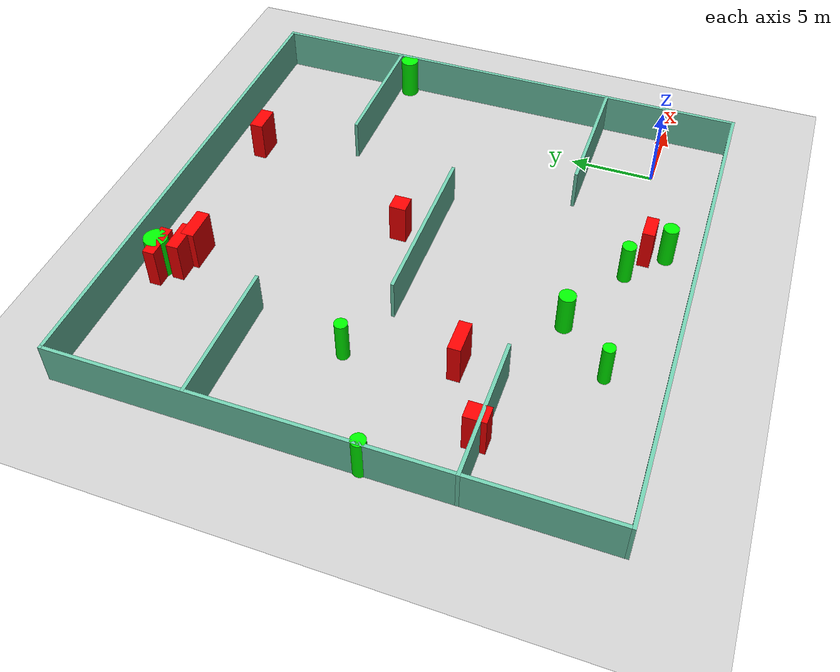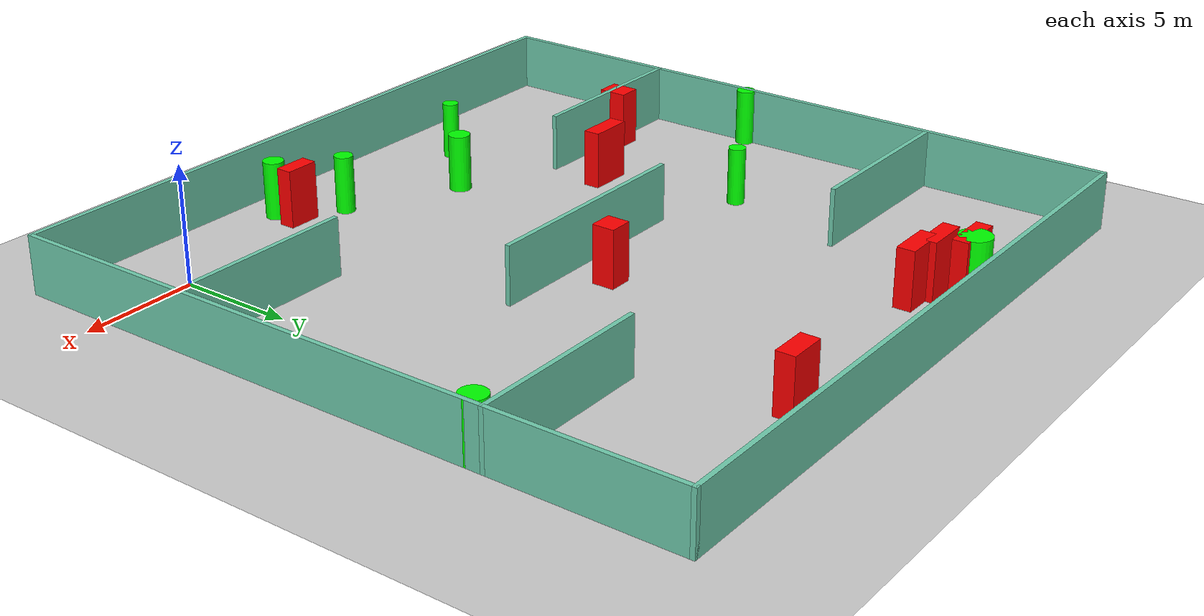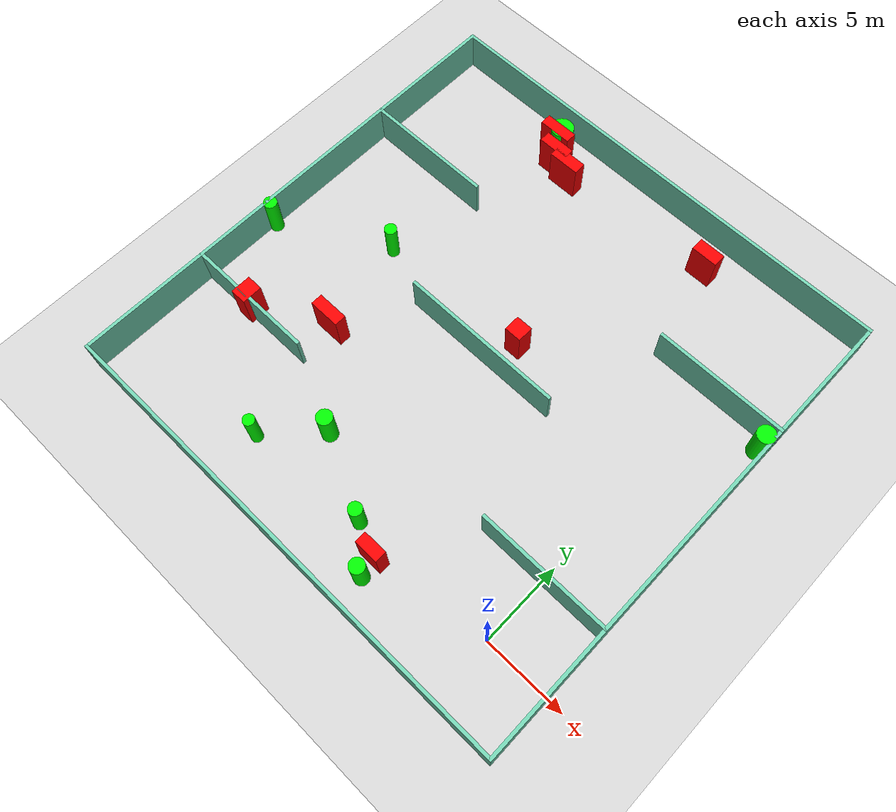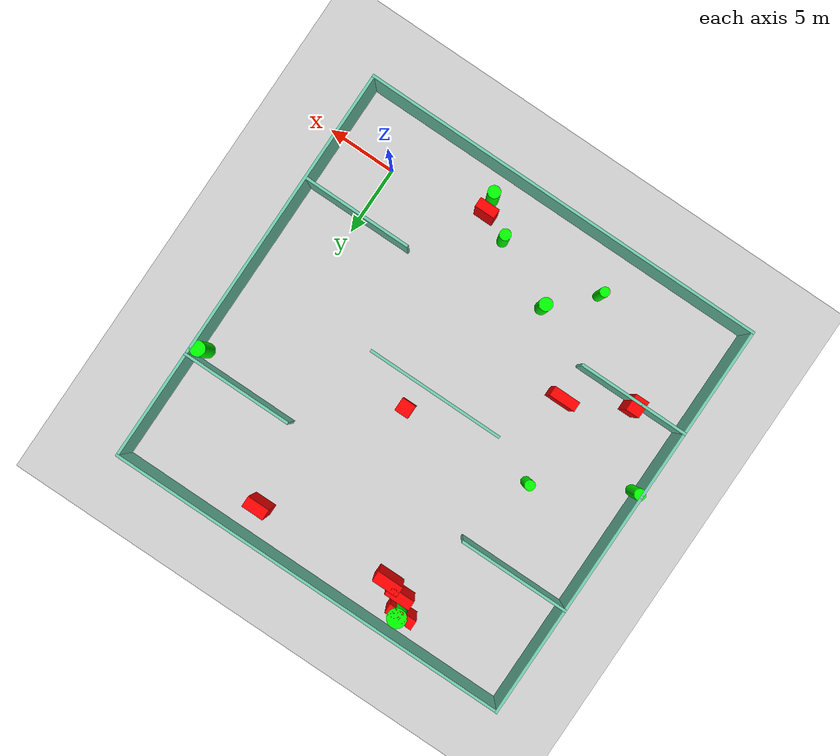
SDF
<sdf version="1.7">
 <world name="default">
  <light name="sun" type="directional">
   <pose>0 0 10 0 -0 0</pose>
   <diffuse>0.8 0.8 0.8 1</diffuse>
   <specular>0.2 0.2 0.2 1</specular>
   <attenuation>
    <range>1000</range>
    <constant>0.9</constant>
    <linear>0.01</linear>
    <quadratic>0.001</quadratic>
   </attenuation>
   <direction>-0.5 0.1 -0.9</direction>
   <spot><inner_angle>0</inner_angle><outer_angle>0</outer_angle><falloff>0</falloff></spot>
  </light>
  <model name="ground_plane">
   <static>1</static>
   <link name="link">
    <collision name="collision">
     <geometry><plane><normal>0 0 1</normal><size>100 100</size></plane></geometry>
     <surface>
      <contact><collide_bitmask>65535</collide_bitmask></contact>
      <friction><ode><mu>100</mu><mu2>50</mu2></ode></friction>
     </surface>
    </collision>
    <visual name="visual">
     <cast_shadows>0</cast_shadows>
     <geometry><plane><normal>0 0 1</normal><size>100 100</size></plane></geometry>
     <material>
      <script><uri>file://media/materials/scripts/gazebo.material</uri><name>Gazebo/Grey</name></script>
     </material>
    </visual>
   </link>
  </model>
  <gravity>0 0 -9.8</gravity>
  <magnetic_field>6e-06 2.3e-05 -4.2e-05</magnetic_field>
  <atmosphere type="adiabatic"/>
  <physics type="ode">
   <max_step_size>0.001</max_step_size>
   <real_time_factor>1</real_time_factor>
   <real_time_update_rate>1000</real_time_update_rate>
  </physics>
  <scene><ambient>0.4 0.4 0.4 1</ambient><background>0.7 0.7 0.7 1</background><shadows>1</shadows></scene>
  <spherical_coordinates>
   <surface_model>EARTH_WGS84</surface_model>
   <latitude_deg>0</latitude_deg>
   <longitude_deg>0</longitude_deg>
   <elevation>0</elevation>
   <heading_deg>0</heading_deg>
  </spherical_coordinates>
  <model name="my_base_walls">
   <link name="Wall_10">
    <collision name="Wall_10_Collision">
     <geometry><box><size>8.2 0.2 2.5</size></box></geometry>
     <pose>0 0 1.25 0 -0 0</pose>
    </collision>
    <visual name="Wall_10_Visual">
     <pose>0 0 1.25 0 -0 0</pose>
     <geometry><box><size>8.2 0.2 2.5</size></box></geometry>
     <material>
      <script><uri>file://media/materials/scripts/gazebo.material</uri><name>Gazebo/Grey</name></script>
      <ambient>0.435294 0.796078 0.67451 1</ambient>
     </material>
     <meta><layer>0</layer></meta>
    </visual>
    <pose>-11 -7 0 0 -0 0</pose>
   </link>
   <link name="Wall_12">
    <collision name="Wall_12_Collision">
     <geometry><box><size>8.2 0.2 2.5</size></box></geometry>
     <pose>0 0 1.25 0 -0 0</pose>
    </collision>
    <visual name="Wall_12_Visual">
     <pose>0 0 1.25 0 -0 0</pose>
     <geometry><box><size>8.2 0.2 2.5</size></box></geometry>
     <material>
      <script><uri>file://media/materials/scripts/gazebo.material</uri><name>Gazebo/Grey</name></script>
      <ambient>0.435294 0.796078 0.67451 1</ambient>
     </material>
     <meta><layer>0</layer></meta>
    </visual>
    <pose>-11 7 0 0 -0 0</pose>
   </link>
   <link name="Wall_14">
    <collision name="Wall_14_Collision">
     <geometry><box><size>8.2 0.2 2.5</size></box></geometry>
     <pose>0 0 1.25 0 -0 0</pose>
    </collision>
    <visual name="Wall_14_Visual">
     <pose>0 0 1.25 0 -0 0</pose>
     <geometry><box><size>8.2 0.2 2.5</size></box></geometry>
     <material>
      <script><uri>file://media/materials/scripts/gazebo.material</uri><name>Gazebo/Grey</name></script>
      <ambient>0.435294 0.796078 0.67451 1</ambient>
     </material>
     <meta><layer>0</layer></meta>
    </visual>
    <pose>11 7 0 0 -0 3.14159</pose>
   </link>
   <link name="Wall_16">
    <collision name="Wall_16_Collision">
     <geometry><box><size>10.2 0.2 2.5</size></box></geometry>
     <pose>0 0 1.25 0 -0 0</pose>
    </collision>
    <visual name="Wall_16_Visual">
     <pose>0 0 1.25 0 -0 0</pose>
     <geometry><box><size>10.2 0.2 2.5</size></box></geometry>
     <material>
      <script><uri>file://media/materials/scripts/gazebo.material</uri><name>Gazebo/Grey</name></script>
      <ambient>0.435294 0.796078 0.67451 1</ambient>
     </material>
     <meta><layer>0</layer></meta>
    </visual>
    <pose>0 0 0 0 -0 3.14159</pose>
   </link>
   <link name="Wall_2">
    <collision name="Wall_2_Collision">
     <geometry><box><size>30.2 0.2 2.5</size></box></geometry>
     <pose>0 0 1.25 0 -0 0</pose>
    </collision>
    <visual name="Wall_2_Visual">
     <pose>0 0 1.25 0 -0 0</pose>
     <geometry><box><size>30.2 0.2 2.5</size></box></geometry>
     <material>
      <script><uri>file://media/materials/scripts/gazebo.material</uri><name>Gazebo/Grey</name></script>
      <ambient>0.435294 0.796078 0.67451 1</ambient>
     </material>
     <meta><layer>0</layer></meta>
    </visual>
    <pose>0 -15 0 0 -0 3.14159</pose>
   </link>
   <link name="Wall_3">
    <collision name="Wall_3_Collision">
     <geometry><box><size>30.2 0.2 2.5</size></box></geometry>
     <pose>0 0 1.25 0 -0 0</pose>
    </collision>
    <visual name="Wall_3_Visual">
     <pose>0 0 1.25 0 -0 0</pose>
     <geometry><box><size>30.2 0.2 2.5</size></box></geometry>
     <material>
      <script><uri>file://media/materials/scripts/gazebo.material</uri><name>Gazebo/Grey</name></script>
      <ambient>0.435294 0.796078 0.67451 1</ambient>
     </material>
     <meta><layer>0</layer></meta>
    </visual>
    <pose>-15 0 0 0 -0 1.5708</pose>
   </link>
   <link name="Wall_4">
    <collision name="Wall_4_Collision">
     <geometry><box><size>30.2 0.2 2.5</size></box></geometry>
     <pose>0 0 1.25 0 -0 0</pose>
    </collision>
    <visual name="Wall_4_Visual">
     <pose>0 0 1.25 0 -0 0</pose>
     <geometry><box><size>30.2 0.2 2.5</size></box></geometry>
     <material>
      <script><uri>file://media/materials/scripts/gazebo.material</uri><name>Gazebo/Grey</name></script>
      <ambient>0.435294 0.796078 0.67451 1</ambient>
     </material>
     <meta><layer>0</layer></meta>
    </visual>
    <pose>0 15 0 0 -0 0</pose>
   </link>
   <link name="Wall_6">
    <collision name="Wall_6_Collision">
     <geometry><box><size>30.2 0.2 2.5</size></box></geometry>
     <pose>0 0 1.25 0 -0 0</pose>
    </collision>
    <visual name="Wall_6_Visual">
     <pose>0 0 1.25 0 -0 0</pose>
     <geometry><box><size>30.2 0.2 2.5</size></box></geometry>
     <material>
      <script><uri>file://media/materials/scripts/gazebo.material</uri><name>Gazebo/Grey</name></script>
      <ambient>0.435294 0.796078 0.67451 1</ambient>
     </material>
     <meta><layer>0</layer></meta>
    </visual>
    <pose>15 0 0 0 -0 1.5708</pose>
   </link>
   <link name="Wall_8">
    <collision name="Wall_8_Collision">
     <geometry><box><size>8.2 0.2 2.5</size></box></geometry>
     <pose>0 0 1.25 0 -0 0</pose>
    </collision>
    <visual name="Wall_8_Visual">
     <pose>0 0 1.25 0 -0 0</pose>
     <geometry><box><size>8.2 0.2 2.5</size></box></geometry>
     <material>
      <script><uri>file://media/materials/scripts/gazebo.material</uri><name>Gazebo/Grey</name></script>
      <ambient>0.435294 0.796078 0.67451 1</ambient>
     </material>
     <meta><layer>0</layer></meta>
    </visual>
    <pose>11 -7 0 0 -0 3.14159</pose>
   </link>
   <static>1</static>
   <pose>-11 11 0 0 -0 0</pose>
  </model>
  <model name="cylinder1">
   <static>1</static>
   <link name="link">
    <inertial>
     <mass>1</mass>
     <inertia><ixx>0.5</ixx><ixy>0</ixy><ixz>0</ixz><iyy>0.5</iyy><iyz>0</iyz><izz>1</izz></inertia>
    </inertial>
    <collision name="collision">
     <geometry><cylinder><radius>0.41019363248815366</radius><length>2.5</length></cylinder></geometry>
    </collision>
    <visual name="visual">
     <geometry><cylinder><radius>0.41019363248815366</radius><length>2.5</length></cylinder></geometry>
     <material>
      <ambient>0 1 0 1</ambient>
      <diffuse>0 1 0 1</diffuse>
      <specular>0.1 0.1 0.1 1</specular>
      <emissive>0 0 0 0</emissive>
     </material>
    </visual>
   </link>
   <pose>-25.818617091118583 8.94463382126994 1.25 0 0 0</pose>
  </model>
  <model name="cylinder2">
   <static>1</static>
   <link name="link">
    <inertial>
     <mass>1</mass>
     <inertia><ixx>0.5</ixx><ixy>0</ixy><ixz>0</ixz><iyy>0.5</iyy><iyz>0</iyz><izz>1</izz></inertia>
    </inertial>
    <collision name="collision">
     <geometry><cylinder><radius>0.5465674529111485</radius><length>2.5</length></cylinder></geometry>
    </collision>
    <visual name="visual">
     <geometry><cylinder><radius>0.5465674529111485</radius><length>2.5</length></cylinder></geometry>
     <material>
      <ambient>0 1 0 1</ambient>
      <diffuse>0 1 0 1</diffuse>
      <specular>0.1 0.1 0.1 1</specular>
      <emissive>0 0 0 0</emissive>
     </material>
    </visual>
   </link>
   <pose>3.5584363789044495 17.256868244682604 1.25 0 0 0</pose>
  </model>
  <model name="cylinder3">
   <static>1</static>
   <link name="link">
    <inertial>
     <mass>1</mass>
     <inertia><ixx>0.5</ixx><ixy>0</ixy><ixz>0</ixz><iyy>0.5</iyy><iyz>0</iyz><izz>1</izz></inertia>
    </inertial>
    <collision name="collision">
     <geometry><cylinder><radius>0.4752976338913155</radius><length>2.5</length></cylinder></geometry>
    </collision>
    <visual name="visual">
     <geometry><cylinder><radius>0.4752976338913155</radius><length>2.5</length></cylinder></geometry>
     <material>
      <ambient>0 1 0 1</ambient>
      <diffuse>0 1 0 1</diffuse>
      <specular>0.1 0.1 0.1 1</specular>
      <emissive>0 0 0 0</emissive>
     </material>
    </visual>
   </link>
   <pose>-13.716936607480548 2.06727059031253 1.25 0 0 0</pose>
  </model>
  <model name="cylinder4">
   <static>1</static>
   <link name="link">
    <inertial>
     <mass>1</mass>
     <inertia><ixx>0.5</ixx><ixy>0</ixy><ixz>0</ixz><iyy>0.5</iyy><iyz>0</iyz><izz>1</izz></inertia>
    </inertial>
    <collision name="collision">
     <geometry><cylinder><radius>0.40332398473936354</radius><length>2.5</length></cylinder></geometry>
    </collision>
    <visual name="visual">
     <geometry><cylinder><radius>0.40332398473936354</radius><length>2.5</length></cylinder></geometry>
     <material>
      <ambient>0 1 0 1</ambient>
      <diffuse>0 1 0 1</diffuse>
      <specular>0.1 0.1 0.1 1</specular>
      <emissive>0 0 0 0</emissive>
     </material>
    </visual>
   </link>
   <pose>-8.958881842748932 -0.2148480563164692 1.25 0 0 0</pose>
  </model>
  <model name="cylinder5">
   <static>1</static>
   <link name="link">
    <inertial>
     <mass>1</mass>
     <inertia><ixx>0.5</ixx><ixy>0</ixy><ixz>0</ixz><iyy>0.5</iyy><iyz>0</iyz><izz>1</izz></inertia>
    </inertial>
    <collision name="collision">
     <geometry><cylinder><radius>0.4476699431889167</radius><length>2.5</length></cylinder></geometry>
    </collision>
    <visual name="visual">
     <geometry><cylinder><radius>0.4476699431889167</radius><length>2.5</length></cylinder></geometry>
     <material>
      <ambient>0 1 0 1</ambient>
      <diffuse>0 1 0 1</diffuse>
      <specular>0.1 0.1 0.1 1</specular>
      <emissive>0 0 0 0</emissive>
     </material>
    </visual>
   </link>
   <pose>-6.796866121019756 -2.1311759214375625 1.25 0 0 0</pose>
  </model>
  <model name="cylinder6">
   <static>1</static>
   <link name="link">
    <inertial>
     <mass>1</mass>
     <inertia><ixx>0.5</ixx><ixy>0</ixy><ixz>0</ixz><iyy>0.5</iyy><iyz>0</iyz><izz>1</izz></inertia>
    </inertial>
    <collision name="collision">
     <geometry><cylinder><radius>0.3695808416531887</radius><length>2.5</length></cylinder></geometry>
    </collision>
    <visual name="visual">
     <geometry><cylinder><radius>0.3695808416531887</radius><length>2.5</length></cylinder></geometry>
     <material>
      <ambient>0 1 0 1</ambient>
      <diffuse>0 1 0 1</diffuse>
      <specular>0.1 0.1 0.1 1</specular>
      <emissive>0 0 0 0</emissive>
     </material>
    </visual>
   </link>
   <pose>-19.500869066110134 12.487698502652298 1.25 0 0 0</pose>
  </model>
  <model name="cylinder7">
   <static>1</static>
   <link name="link">
    <inertial>
     <mass>1</mass>
     <inertia><ixx>0.5</ixx><ixy>0</ixy><ixz>0</ixz><iyy>0.5</iyy><iyz>0</iyz><izz>1</izz></inertia>
    </inertial>
    <collision name="collision">
     <geometry><cylinder><radius>0.6892050500892506</radius><length>2.5</length></cylinder></geometry>
    </collision>
    <visual name="visual">
     <geometry><cylinder><radius>0.6892050500892506</radius><length>2.5</length></cylinder></geometry>
     <material>
      <ambient>0 1 0 1</ambient>
      <diffuse>0 1 0 1</diffuse>
      <specular>0.1 0.1 0.1 1</specular>
      <emissive>0 0 0 0</emissive>
     </material>
    </visual>
   </link>
   <pose>-17.150486880026683 24.589649997300196 1.25 0 0 0</pose>
  </model>
  <model name="cylinder8">
   <static>1</static>
   <link name="link">
    <inertial>
     <mass>1</mass>
     <inertia><ixx>0.5</ixx><ixy>0</ixy><ixz>0</ixz><iyy>0.5</iyy><iyz>0</iyz><izz>1</izz></inertia>
    </inertial>
    <collision name="collision">
     <geometry><cylinder><radius>0.34931333701871986</radius><length>2.5</length></cylinder></geometry>
    </collision>
    <visual name="visual">
     <geometry><cylinder><radius>0.34931333701871986</radius><length>2.5</length></cylinder></geometry>
     <material>
      <ambient>0 1 0 1</ambient>
      <diffuse>0 1 0 1</diffuse>
      <specular>0.1 0.1 0.1 1</specular>
      <emissive>0 0 0 0</emissive>
     </material>
    </visual>
   </link>
   <pose>-16.46593862710507 -0.7652276323428477 1.25 0 0 0</pose>
  </model>
  <model name="box1">
   <static>1</static>
   <link name="link">
    <inertial>
     <mass>1</mass>
     <inertia><ixx>0.083</ixx><ixy>0</ixy><ixz>0</ixz><iyy>0.083</iyy><iyz>0</iyz><izz>0.083</izz></inertia>
    </inertial>
    <collision name="collision">
     <geometry><box><size>1.9407865652793008 0.7673913826406573 2.5</size></box></geometry>
    </collision>
    <visual name="visual">
     <geometry><box><size>1.9407865652793008 0.7673913826406573 2.5</size></box></geometry>
     <material>
      <ambient>1 0 0 1</ambient>
      <diffuse>1 0 0 1</diffuse>
      <specular>0.1 0.1 0.1 1</specular>
      <emissive>0 0 0 0</emissive>
     </material>
    </visual>
    <sensor name="my_contact" type="contact">
     <contact><collision>box_collision</collision><topic>__default_topic__</topic></contact>
    </sensor>
   </link>
   <pose>-15.402564602804816 23.071469038948827 1.25 0 0 0</pose>
  </model>
  <model name="box2">
   <static>1</static>
   <link name="link">
    <inertial>
     <mass>1</mass>
     <inertia><ixx>0.083</ixx><ixy>0</ixy><ixz>0</ixz><iyy>0.083</iyy><iyz>0</iyz><izz>0.083</izz></inertia>
    </inertial>
    <collision name="collision">
     <geometry><box><size>1.9373340335001277 0.717313530108326 2.5</size></box></geometry>
    </collision>
    <visual name="visual">
     <geometry><box><size>1.9373340335001277 0.717313530108326 2.5</size></box></geometry>
     <material>
      <ambient>1 0 0 1</ambient>
      <diffuse>1 0 0 1</diffuse>
      <specular>0.1 0.1 0.1 1</specular>
      <emissive>0 0 0 0</emissive>
     </material>
    </visual>
    <sensor name="my_contact" type="contact">
     <contact><collision>box_collision</collision><topic>__default_topic__</topic></contact>
    </sensor>
   </link>
   <pose>-18.22484016616642 6.508252052372342 1.25 0 0 0</pose>
  </model>
  <model name="box3">
   <static>1</static>
   <link name="link">
    <inertial>
     <mass>1</mass>
     <inertia><ixx>0.083</ixx><ixy>0</ixy><ixz>0</ixz><iyy>0.083</iyy><iyz>0</iyz><izz>0.083</izz></inertia>
    </inertial>
    <collision name="collision">
     <geometry><box><size>1.0412299852883002 0.987309244782523 2.5</size></box></geometry>
    </collision>
    <visual name="visual">
     <geometry><box><size>1.0412299852883002 0.987309244782523 2.5</size></box></geometry>
     <material>
      <ambient>1 0 0 1</ambient>
      <diffuse>1 0 0 1</diffuse>
      <specular>0.1 0.1 0.1 1</specular>
      <emissive>0 0 0 0</emissive>
     </material>
    </visual>
    <sensor name="my_contact" type="contact">
     <contact><collision>box_collision</collision><topic>__default_topic__</topic></contact>
    </sensor>
   </link>
   <pose>-9.90139761612663 12.870296981182895 1.25 0 0 0</pose>
  </model>
  <model name="box4">
   <static>1</static>
   <link name="link">
    <inertial>
     <mass>1</mass>
     <inertia><ixx>0.083</ixx><ixy>0</ixy><ixz>0</ixz><iyy>0.083</iyy><iyz>0</iyz><izz>0.083</izz></inertia>
    </inertial>
    <collision name="collision">
     <geometry><box><size>1.4778543007991205 0.6931566825329478 2.5</size></box></geometry>
    </collision>
    <visual name="visual">
     <geometry><box><size>1.4778543007991205 0.6931566825329478 2.5</size></box></geometry>
     <material>
      <ambient>1 0 0 1</ambient>
      <diffuse>1 0 0 1</diffuse>
      <specular>0.1 0.1 0.1 1</specular>
      <emissive>0 0 0 0</emissive>
     </material>
    </visual>
    <sensor name="my_contact" type="contact">
     <contact><collision>box_collision</collision><topic>__default_topic__</topic></contact>
    </sensor>
   </link>
   <pose>-7.002152715023179 -1.012832280380676 1.25 0 0 0</pose>
  </model>
  <model name="box5">
   <static>1</static>
   <link name="link">
    <inertial>
     <mass>1</mass>
     <inertia><ixx>0.083</ixx><ixy>0</ixy><ixz>0</ixz><iyy>0.083</iyy><iyz>0</iyz><izz>0.083</izz></inertia>
    </inertial>
    <collision name="collision">
     <geometry><box><size>1.643737652213799 0.8010711993498887 2.5</size></box></geometry>
    </collision>
    <visual name="visual">
     <geometry><box><size>1.643737652213799 0.8010711993498887 2.5</size></box></geometry>
     <material>
      <ambient>1 0 0 1</ambient>
      <diffuse>1 0 0 1</diffuse>
      <specular>0.1 0.1 0.1 1</specular>
      <emissive>0 0 0 0</emissive>
     </material>
    </visual>
    <sensor name="my_contact" type="contact">
     <contact><collision>box_collision</collision><topic>__default_topic__</topic></contact>
    </sensor>
   </link>
   <pose>-5.4437286351588465 23.799065720931694 1.25 0 0 0</pose>
  </model>
  <model name="box6">
   <static>1</static>
   <link name="link">
    <inertial>
     <mass>1</mass>
     <inertia><ixx>0.083</ixx><ixy>0</ixy><ixz>0</ixz><iyy>0.083</iyy><iyz>0</iyz><izz>0.083</izz></inertia>
    </inertial>
    <collision name="collision">
     <geometry><box><size>2.06169778374875 0.689578799733774 2.5</size></box></geometry>
    </collision>
    <visual name="visual">
     <geometry><box><size>2.06169778374875 0.689578799733774 2.5</size></box></geometry>
     <material>
      <ambient>1 0 0 1</ambient>
      <diffuse>1 0 0 1</diffuse>
      <specular>0.1 0.1 0.1 1</specular>
      <emissive>0 0 0 0</emissive>
     </material>
    </visual>
    <sensor name="my_contact" type="contact">
     <contact><collision>box_collision</collision><topic>__default_topic__</topic></contact>
    </sensor>
   </link>
   <pose>-17.308839453818887 24.374726195630323 1.25 0 0 0</pose>
  </model>
  <model name="box7">
   <static>1</static>
   <link name="link">
    <inertial>
     <mass>1</mass>
     <inertia><ixx>0.083</ixx><ixy>0</ixy><ixz>0</ixz><iyy>0.083</iyy><iyz>0</iyz><izz>0.083</izz></inertia>
    </inertial>
    <collision name="collision">
     <geometry><box><size>1.9127507672891142 0.7025359338641811 2.5</size></box></geometry>
    </collision>
    <visual name="visual">
     <geometry><box><size>1.9127507672891142 0.7025359338641811 2.5</size></box></geometry>
     <material>
      <ambient>1 0 0 1</ambient>
      <diffuse>1 0 0 1</diffuse>
      <specular>0.1 0.1 0.1 1</specular>
      <emissive>0 0 0 0</emissive>
     </material>
    </visual>
    <sensor name="my_contact" type="contact">
     <contact><collision>box_collision</collision><topic>__default_topic__</topic></contact>
    </sensor>
   </link>
   <pose>-16.555009485778655 23.391250962198637 1.25 0 0 0</pose>
  </model>
  <model name="box8">
   <static>1</static>
   <link name="link">
    <inertial>
     <mass>1</mass>
     <inertia><ixx>0.083</ixx><ixy>0</ixy><ixz>0</ixz><iyy>0.083</iyy><iyz>0</iyz><izz>0.083</izz></inertia>
    </inertial>
    <collision name="collision">
     <geometry><box><size>1.0078002008004185 1.2457781750639203 2.5</size></box></geometry>
    </collision>
    <visual name="visual">
     <geometry><box><size>1.0078002008004185 1.2457781750639203 2.5</size></box></geometry>
     <material>
      <ambient>1 0 0 1</ambient>
      <diffuse>1 0 0 1</diffuse>
      <specular>0.1 0.1 0.1 1</specular>
      <emissive>0 0 0 0</emissive>
     </material>
    </visual>
    <sensor name="my_contact" type="contact">
     <contact><collision>box_collision</collision><topic>__default_topic__</topic></contact>
    </sensor>
   </link>
   <pose>-22.43760354234094 4.225889047579259 1.25 0 0 0</pose>
  </model>
 </world>
</sdf>
